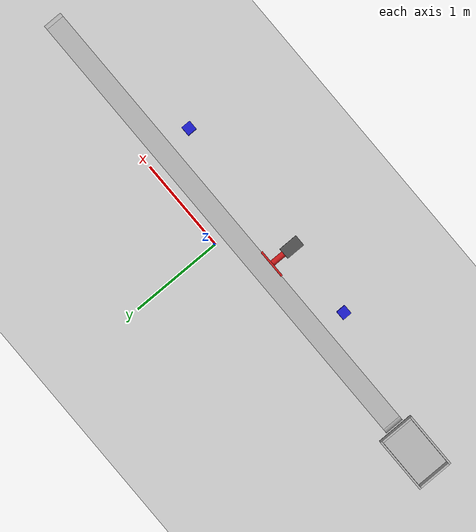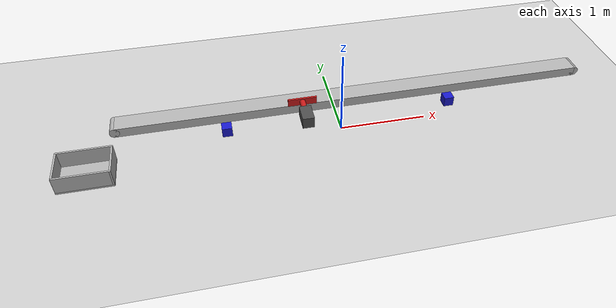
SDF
<?xml version="1.0" ?>
<sdf version="1.8">
  <world name="inspection_system">

    <gui fullscreen="false">
      <plugin filename="GzScene3D" name="3D View">
        <gz-gui>
          <title>3D View</title>
          <property key="showTitleBar" type="bool">false</property>
          <property key="state" type="string">docked</property>
        </gz-gui>
        <engine>ogre2</engine>
        <scene>scene</scene>
        <ambient_light>0.4 0.4 0.4</ambient_light>
        <background_color>0.8 0.8 0.8</background_color>
      </plugin>

      <plugin filename="WorldControl" name="World control">
        <gz-gui>
          <title>World control</title>
          <property key="showTitleBar" type="bool">true</property>
          <property key="state" type="string">docked</property>
        </gz-gui>
        <play_pause>true</play_pause>
        <step>true</step>
        <start_paused>true</start_paused>
      </plugin>

      <plugin filename="WorldStats" name="World stats">
        <gz-gui>
          <title>World stats</title>
          <property key="showTitleBar" type="bool">false</property>
          <property key="state" type="string">docked</property>
        </gz-gui>
        <sim_time>true</sim_time>
        <real_time>true</real_time>
        <real_time_factor>true</real_time_factor>
        <iterations>true</iterations>
      </plugin>

      <plugin filename="EntityTree" name="Entity Tree">
        <gz-gui>
          <title>Entity Tree</title>
          <property key="state" type="string">docked</property>
          <property key="visible" type="bool">true</property>
        </gz-gui>
      </plugin>

      <plugin filename="ResourceSpawner" name="Resource Spawner">
        <gz-gui>
          <title>Resource Spawner</title>
          <property key="state" type="string">docked</property>
          <property key="visible" type="bool">true</property>
        </gz-gui>
      </plugin>
    </gui>

    <physics name='4ms' type='ignored'>
      <max_step_size>0.004</max_step_size>
      <real_time_factor>1</real_time_factor>
      <real_time_update_rate>250</real_time_update_rate>
    </physics>

    <plugin name='gz::sim::systems::Physics' filename='gz-sim-physics-system'/>
    <plugin name='gz::sim::systems::UserCommands' filename='gz-sim-user-commands-system'/>
    <plugin name='gz::sim::systems::SceneBroadcaster' filename='gz-sim-scene-broadcaster-system'/>
    <plugin name='gz::sim::systems::Contact' filename='gz-sim-contact-system'/>

    <plugin name='ignition::gazebo::systems::Sensors' filename='ignition-gazebo-sensors-system'>
      <render_engine>ogre2</render_engine>
    </plugin>

    <gravity>0 0 -9.8000000000000007</gravity>
    <magnetic_field>5.5644999999999998e-06 2.2875799999999999e-05 -4.2388400000000002e-05</magnetic_field>
    <atmosphere type='adiabatic'/>

    <scene>
      <ambient>0.400000006 0.400000006 0.400000006 1</ambient>
      <background>0.699999988 0.699999988 0.699999988 1</background>
      <shadows>false</shadows>
    </scene>

    <model name='ground_plane'>
      <static>true</static>
      <link name='link'>
        <collision name='collision'>
          <geometry>
            <plane>
              <normal>0 0 1</normal>
              <size>100 100</size>
            </plane>
          </geometry>
          <surface>
            <friction>
              <ode/>
            </friction>
            <bounce/>
            <contact/>
          </surface>
        </collision>
        <visual name='visual'>
          <geometry>
            <plane>
              <normal>0 0 1</normal>
              <size>100 100</size>
            </plane>
          </geometry>
          <material>
            <ambient>0.800000012 0.800000012 0.800000012 1</ambient>
            <diffuse>0.800000012 0.800000012 0.800000012 1</diffuse>
            <specular>0.800000012 0.800000012 0.800000012 1</specular>
          </material>
        </visual>
        <pose>0 0 0 0 0 0</pose>
        <inertial>
          <pose>0 0 0 0 0 0</pose>
          <mass>1</mass>
          <inertia>
            <ixx>1</ixx>
            <ixy>0</ixy>
            <ixz>0</ixz>
            <iyy>1</iyy>
            <iyz>0</iyz>
            <izz>1</izz>
          </inertia>
        </inertial>
        <enable_wind>false</enable_wind>
      </link>
      <pose>0 0 0 0 0 0</pose>
      <self_collide>false</self_collide>
    </model>

    <model name='conveyor_belt'>
      <static>true</static>
      <link name='base_link'>
        <pose>0 0 0 0 0 0</pose>
        <inertial>
          <mass>6.0599999999999996</mass>
          <inertia>
            <ixx>0.0027299999999999998</ixx>
            <ixy>0</ixy>
            <ixz>0</ixz>
            <iyy>0.032554</iyy>
            <iyz>1.5e-05</iyz>
            <izz>0.031391000000000002</izz>
          </inertia>
          <pose>0 0 0 0 0 0</pose>
        </inertial>
        <collision name='main_collision'>
          <pose relative_to='base_link'>0 0 0 0 0 0</pose>
          <geometry>
            <box>
              <size>5 0.20000000000000001 0.10000000000000001</size>
            </box>
          </geometry>
          <surface>
            <friction>
              <ode>
                <mu>0.69999999999999996</mu>
                <mu2>150</mu2>
                <fdir1>0 1 0</fdir1>
              </ode>
            </friction>
            <bounce/>
            <contact/>
          </surface>
        </collision>
        <visual name='main_visual'>
          <pose relative_to='base_link'>0 0 0 0 0 0</pose>
          <geometry>
            <box>
              <size>5 0.20000000000000001 0.10000000000000001</size>
            </box>
          </geometry>
          <material>
            <ambient>0.7 0.7 0.7 1</ambient>
            <diffuse>0.7 0.7 0.7 1</diffuse>
            <specular>0.75 0.75 0.75 1</specular>
          </material>
        </visual>
        <visual name='visual_1'>
          <pose relative_to='base_link'>2.5 0 0 -1.5707963270000003 0 0</pose>
          <geometry>
            <cylinder>
              <length>0.20000000000000001</length>
              <radius>0.050000000000000003</radius>
            </cylinder>
          </geometry>
          <material>
            <ambient>0.7 0.7 0.7 1</ambient>
            <diffuse>0.7 0.7 0.7 1</diffuse>
            <specular>0.75 0.75 0.75 1</specular>
          </material>
        </visual>
        <visual name='visual_2'>
          <pose relative_to='base_link'>-2.5 0 0 -1.5707963270000003 0 0</pose>
          <geometry>
            <cylinder>
              <length>0.20000000000000001</length>
              <radius>0.050000000000000003</radius>
            </cylinder>
          </geometry>
          <material>
            <ambient>0.7 0.7 0.7 1</ambient>
            <diffuse>0.7 0.7 0.7 1</diffuse>
            <specular>0.75 0.75 0.75 1</specular>
          </material>
        </visual>
        <gravity>true</gravity>
        <kinematic>false</kinematic>
        <enable_wind>false</enable_wind>
      </link>
      <plugin name='gz::sim::systems::TrackController' filename='gz-sim-track-controller-system'>
        <link>base_link</link>
        <odometry_publish_frequency>1</odometry_publish_frequency>
      </plugin>
      <plugin name='gz::sim::systems::TriggeredPublisher' filename='gz-sim-triggered-publisher-system'>
        <input type='gz.msgs.Int32' topic='/keyboard/keypress'>
          <match field='data'>87</match>
        </input>
        <output type='gz.msgs.Double' topic='/model/conveyor_belt/link/base_link/track_cmd_vel'>data: 1.0</output>
      </plugin>
      <plugin name='gz::sim::systems::TriggeredPublisher' filename='gz-sim-triggered-publisher-system'>
        <input type='gz.msgs.Int32' topic='/keyboard/keypress'>
          <match field='data'>88</match>
        </input>
        <output type='gz.msgs.Double' topic='/model/conveyor_belt/link/base_link/track_cmd_vel'>data: -1.0</output>
      </plugin>
      <plugin name='gz::sim::systems::TriggeredPublisher' filename='gz-sim-triggered-publisher-system'>
        <input type='gz.msgs.Int32' topic='/keyboard/keypress'>
          <match field='data'>83</match>
        </input>
        <output type='gz.msgs.Double' topic='/model/conveyor_belt/link/base_link/track_cmd_vel'>data: 0.0</output>
      </plugin>
      <self_collide>false</self_collide>
      <pose>0.097486302256584167 -0.1984190046787262 0.63565355539321899 0 0 0</pose>
    </model>

    <model name='parts_bin'>
      <static>true</static>
      <link name='base'>
        <collision name='base_collision'>
          <geometry>
            <box>
              <size>0.59999999999999998 0.40000000000000002 0.02</size>
            </box>
          </geometry>
          <surface>
            <friction>
              <ode/>
            </friction>
            <bounce/>
            <contact/>
          </surface>
        </collision>
        <visual name='base_visual'>
          <geometry>
            <box>
              <size>0.59999999999999998 0.40000000000000002 0.02</size>
            </box>
          </geometry>
          <material>
            <ambient>0.7 0.7 0.7 1</ambient>
            <diffuse>0.7 0.7 0.7 1</diffuse>
            <specular>0.75 0.75 0.75 1</specular>
          </material>
        </visual>
        <pose>0 0 0 0 0 0</pose>
        <inertial>
          <pose>0 0 0 0 0 0</pose>
          <mass>1</mass>
          <inertia>
            <ixx>1</ixx>
            <ixy>0</ixy>
            <ixz>0</ixz>
            <iyy>1</iyy>
            <iyz>0</iyz>
            <izz>1</izz>
          </inertia>
        </inertial>
        <enable_wind>false</enable_wind>
      </link>
      <link name='left_wall'>
        <pose>0 0.18999999999999995 0.11 0 -3.8367972022845405e-39 0</pose>
        <collision name='collision'>
          <geometry>
            <box>
              <size>0.59999999999999998 0.02 0.20000000000000001</size>
            </box>
          </geometry>
          <surface>
            <friction>
              <ode/>
            </friction>
            <bounce/>
            <contact/>
          </surface>
        </collision>
        <visual name='visual'>
          <geometry>
            <box>
              <size>0.59999999999999998 0.02 0.20000000000000001</size>
            </box>
          </geometry>
          <material>
            <ambient>0.7 0.7 0.7 1</ambient>
            <diffuse>0.7 0.7 0.7 1</diffuse>
            <specular>0.75 0.75 0.75 1</specular>
          </material>
        </visual>
        <inertial>
          <pose>0 0 0 0 0 0</pose>
          <mass>1</mass>
          <inertia>
            <ixx>1</ixx>
            <ixy>0</ixy>
            <ixz>0</ixz>
            <iyy>1</iyy>
            <iyz>0</iyz>
            <izz>1</izz>
          </inertia>
        </inertial>
        <enable_wind>false</enable_wind>
      </link>
      <link name='right_wall'>
        <pose>0 -0.18999999999999995 0.11 0 -3.8367972022845405e-39 0</pose>
        <collision name='collision'>
          <geometry>
            <box>
              <size>0.59999999999999998 0.02 0.20000000000000001</size>
            </box>
          </geometry>
          <surface>
            <friction>
              <ode/>
            </friction>
            <bounce/>
            <contact/>
          </surface>
        </collision>
        <visual name='visual'>
          <geometry>
            <box>
              <size>0.59999999999999998 0.02 0.20000000000000001</size>
            </box>
          </geometry>
          <material>
            <ambient>0.7 0.7 0.7 1</ambient>
            <diffuse>0.7 0.7 0.7 1</diffuse>
            <specular>0.75 0.75 0.75 1</specular>
          </material>
        </visual>
        <inertial>
          <pose>0 0 0 0 0 0</pose>
          <mass>1</mass>
          <inertia>
            <ixx>1</ixx>
            <ixy>0</ixy>
            <ixz>0</ixz>
            <iyy>1</iyy>
            <iyz>0</iyz>
            <izz>1</izz>
          </inertia>
        </inertial>
        <enable_wind>false</enable_wind>
      </link>
      <link name='front_wall'>
        <pose>0.29000000000000004 0 0.11 0 -3.8367972022845405e-39 0</pose>
        <collision name='collision'>
          <geometry>
            <box>
              <size>0.02 0.40000000000000002 0.20000000000000001</size>
            </box>
          </geometry>
          <surface>
            <friction>
              <ode/>
            </friction>
            <bounce/>
            <contact/>
          </surface>
        </collision>
        <visual name='visual'>
          <geometry>
            <box>
              <size>0.02 0.40000000000000002 0.20000000000000001</size>
            </box>
          </geometry>
          <material>
            <ambient>0.7 0.7 0.7 1</ambient>
            <diffuse>0.7 0.7 0.7 1</diffuse>
            <specular>0.75 0.75 0.75 1</specular>
          </material>
        </visual>
        <inertial>
          <pose>0 0 0 0 0 0</pose>
          <mass>1</mass>
          <inertia>
            <ixx>1</ixx>
            <ixy>0</ixy>
            <ixz>0</ixz>
            <iyy>1</iyy>
            <iyz>0</iyz>
            <izz>1</izz>
          </inertia>
        </inertial>
        <enable_wind>false</enable_wind>
      </link>
      <link name='back_wall'>
        <pose>-0.29000000000000004 0 0.11 0 -3.8367972022845405e-39 0</pose>
        <collision name='collision'>
          <geometry>
            <box>
              <size>0.02 0.40000000000000002 0.20000000000000001</size>
            </box>
          </geometry>
          <surface>
            <friction>
              <ode/>
            </friction>
            <bounce/>
            <contact/>
          </surface>
        </collision>
        <visual name='visual'>
          <geometry>
            <box>
              <size>0.02 0.40000000000000002 0.20000000000000001</size>
            </box>
          </geometry>
          <material>
            <ambient>0.7 0.7 0.7 1</ambient>
            <diffuse>0.7 0.7 0.7 1</diffuse>
            <specular>0.75 0.75 0.75 1</specular>
          </material>
        </visual>
        <inertial>
          <pose>0 0 0 0 0 0</pose>
          <mass>1</mass>
          <inertia>
            <ixx>1</ixx>
            <ixy>0</ixy>
            <ixz>0</ixz>
            <iyy>1</iyy>
            <iyz>0</iyz>
            <izz>1</izz>
          </inertia>
        </inertial>
        <enable_wind>false</enable_wind>
      </link>
      <joint name='left_joint' type='fixed'>
        <parent>base</parent>
        <child>left_wall</child>
        <pose>0 0 0 0 0 0</pose>
      </joint>
      <joint name='right_joint' type='fixed'>
        <parent>base</parent>
        <child>right_wall</child>
        <pose>0 0 0 0 0 0</pose>
      </joint>
      <joint name='front_joint' type='fixed'>
        <parent>base</parent>
        <child>front_wall</child>
        <pose>0 0 0 0 0 0</pose>
      </joint>
      <joint name='back_joint' type='fixed'>
        <parent>base</parent>
        <child>back_wall</child>
        <pose>0 0 0 0 0 0</pose>
      </joint>
      <pose>-2.83 -0.19 0.0088398000225424767 0 0 0</pose>
      <self_collide>false</self_collide>
    </model>

    <model name='solenoid_pusher'>
      <static>false</static>
      <pose>-0.5 -0.55 0.73 0 0 0</pose>
      <link name='solenoid_base'>
        <pose>0 0 0 0 0 0</pose>
        <inertial>
          <mass>5.0</mass>
          <inertia>
            <ixx>0.05</ixx><ixy>0</ixy><ixz>0</ixz>
            <iyy>0.05</iyy><iyz>0</iyz>
            <izz>0.05</izz>
          </inertia>
        </inertial>
        <visual name='base_visual'>
          <geometry>
            <box><size>0.12 0.2 0.12</size></box>
          </geometry>
          <material>
            <ambient>0.3 0.3 0.3 1</ambient>
            <diffuse>0.3 0.3 0.3 1</diffuse>
          </material>
        </visual>
        <collision name='base_collision'>
          <geometry>
            <box><size>0.12 0.2 0.12</size></box>
          </geometry>
        </collision>
      </link>
      <joint name='world_fix' type='fixed'>
        <parent>world</parent>
        <child>solenoid_base</child>
      </joint>
      <link name='pusher_rod'>
        <pose>0 0 0 0 0 0</pose>
        <inertial>
          <mass>0.5</mass>
          <inertia>
            <ixx>0.001</ixx><ixy>0</ixy><ixz>0</ixz>
            <iyy>0.001</iyy><iyz>0</iyz>
            <izz>0.001</izz>
          </inertia>
        </inertial>
        <visual name='rod_visual'>
          <pose>0 0.1 0 1.5708 0 0</pose>
          <geometry>
            <cylinder>
              <radius>0.03</radius>
              <length>0.3</length>
            </cylinder>
          </geometry>
          <material>
            <ambient>0.8 0.1 0.1 1</ambient>
            <diffuse>0.8 0.1 0.1 1</diffuse>
          </material>
        </visual>
        <collision name='rod_collision'>
          <pose>0 0.1 0 1.5708 0 0</pose>
          <geometry>
            <cylinder>
              <radius>0.03</radius>
              <length>0.3</length>
            </cylinder>
          </geometry>
        </collision>
      </link>
      <link name='pusher_blade'>
        <pose>0 0.25 0 0 0 0</pose>
        <inertial>
          <mass>0.2</mass>
          <inertia>
            <ixx>0.001</ixx><ixy>0</ixy><ixz>0</ixz>
            <iyy>0.001</iyy><iyz>0</iyz>
            <izz>0.001</izz>
          </inertia>
        </inertial>
        <visual name='blade_visual'>
          <geometry>
            <box><size>0.3 0.02 0.08</size></box>
          </geometry>
          <material>
            <ambient>0.8 0.1 0.1 1</ambient>
            <diffuse>0.8 0.1 0.1 1</diffuse>
          </material>
        </visual>
        <collision name='blade_collision'>
          <geometry>
            <box><size>0.3 0.02 0.08</size></box>
          </geometry>
        </collision>
      </link>
      <joint name='blade_joint' type='fixed'>
        <parent>pusher_rod</parent>
        <child>pusher_blade</child>
      </joint>
      <joint name='slider_joint' type='prismatic'>
        <parent>solenoid_base</parent>
        <child>pusher_rod</child>
        <axis>
          <xyz>0 1 0</xyz>
          <limit>
            <lower>0.0</lower>
            <upper>0.15</upper>
            <effort>5000</effort>
            <velocity>20.0</velocity>
          </limit>
        </axis>
      </joint>
      <plugin name="gz::sim::systems::JointPositionController" filename="gz-sim-joint-position-controller-system">
        <joint_name>slider_joint</joint_name>
        <topic>/model/solenoid_pusher/joint/slider_joint/cmd_pos</topic>
        <p_gain>5000</p_gain>
        <i_gain>10</i_gain>
        <d_gain>50</d_gain>
      </plugin>
      <plugin name='gz::sim::systems::TriggeredPublisher' filename='gz-sim-triggered-publisher-system'>
        <input type='gz.msgs.Int32' topic='/keyboard/keypress'>
          <match field='data'>80</match> </input>
        <output type='gz.msgs.Double' topic='/model/solenoid_pusher/joint/slider_joint/cmd_pos'>data: 0.15</output>
      </plugin>
      <plugin name='gz::sim::systems::TriggeredPublisher' filename='gz-sim-triggered-publisher-system'>
        <input type='gz.msgs.Int32' topic='/keyboard/keypress'>
          <match field='data'>112</match> </input>
        <output type='gz.msgs.Double' topic='/model/solenoid_pusher/joint/slider_joint/cmd_pos'>data: 0.15</output>
      </plugin>
      <plugin name='gz::sim::systems::TriggeredPublisher' filename='gz-sim-triggered-publisher-system'>
        <input type='gz.msgs.Int32' topic='/keyboard/keypress'>
          <match field='data'>82</match> </input>
        <output type='gz.msgs.Double' topic='/model/solenoid_pusher/joint/slider_joint/cmd_pos'>data: 0.0</output>
      </plugin>
      <plugin name='gz::sim::systems::TriggeredPublisher' filename='gz-sim-triggered-publisher-system'>
        <input type='gz.msgs.Int32' topic='/keyboard/keypress'>
          <match field='data'>114</match> </input>
        <output type='gz.msgs.Double' topic='/model/solenoid_pusher/joint/slider_joint/cmd_pos'>data: 0.0</output>
      </plugin>
    </model>

    <model name='inspection_camera'>
      <static>true</static>
      <pose>1 -0.53 0.69 0 0 1.5708</pose>
      <link name='camera_link'>
        <visual name='camera_visual'>
          <geometry><box><size>0.1 0.1 0.1</size></box></geometry>
          <material><ambient>0.1 0.1 0.8 1</ambient><diffuse>0.1 0.1 0.8 1</diffuse></material>
        </visual>

        <sensor name='camera1' type='camera'>
          <topic>/model/camera1/raw_image</topic>
          <update_rate>20</update_rate>
          <camera name='intel_cam'>
            <horizontal_fov>1.2</horizontal_fov>
            <image>
              <width>640</width>
              <height>480</height>
              <format>R8G8B8</format>
            </image>
            <clip><near>0.1</near><far>10.0</far></clip>
          </camera>
          <always_on>1</always_on>
          <visualize>true</visualize>
        </sensor>
      </link>
    </model>

    <model name='check_camera'>
      <static>true</static>
      <pose>-1.3 -0.53 0.69 0 0 1.5708</pose>
      <link name='camera_link'>
        <visual name='camera_visual'>
          <geometry><box><size>0.1 0.1 0.1</size></box></geometry>
          <material><ambient>0.1 0.1 0.8 1</ambient><diffuse>0.1 0.1 0.8 1</diffuse></material>
        </visual>

        <sensor name='camera2' type='camera'>
          <topic>/model/camera2/raw_image</topic>
          <update_rate>20</update_rate>
          <camera name='intel_cam'>
            <horizontal_fov>1.2</horizontal_fov>
            <image>
              <width>640</width>
              <height>480</height>
              <format>R8G8B8</format>
            </image>
            <clip><near>0.1</near><far>10.0</far></clip>
          </camera>
          <always_on>1</always_on>
          <visualize>true</visualize>
        </sensor>
      </link>
    </model>

    <light name='sun' type='directional'>
      <pose>0 0 10 0 0 0</pose>
      <cast_shadows>true</cast_shadows>
      <intensity>1</intensity>
      <direction>-0.5 0.10000000000000001 -0.90000000000000002</direction>
      <diffuse>0.800000012 0.800000012 0.800000012 1</diffuse>
      <specular>0.200000003 0.200000003 0.200000003 1</specular>
      <attenuation>
        <range>1000</range>
        <linear>0.0099999997764825821</linear>
        <constant>0.89999997615814209</constant>
        <quadratic>0.0010000000474974513</quadratic>
      </attenuation>
      <spot>
        <inner_angle>0</inner_angle>
        <outer_angle>0</outer_angle>
        <falloff>0</falloff>
      </spot>
    </light>

  </world>
</sdf>
